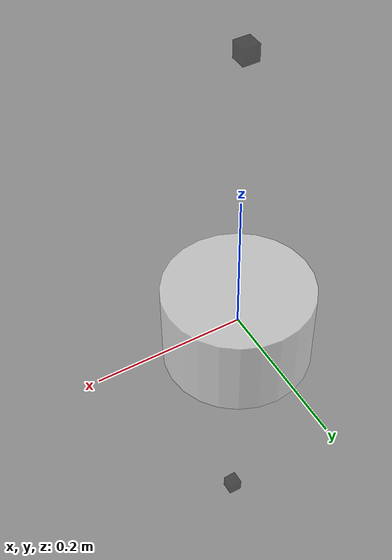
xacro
<?xml version="1.0"?>
<robot xmlns:xacro="https://www.ros.org/wiki/xacro" name="first_robot">
    <!-- 声明base模块 -->
    <xacro:macro name="base_link" params="length radius">
        <link name="base_link">
        <visual>
            <!-- 沿着自己几何中心的偏移和旋转量 -->
            <origin xyz="0.0 0.0 0.0" rpy="0.0 0.0 0.0"/>
            <geometry>
                <!-- 圆柱 半径0.10m 高度 length=0.12m -->
                <cylinder radius="${radius}" length="${length}"/>
                <!-- 圆柱 直径=0.2 -->
            </geometry>
            <material name="white">
                <color rgba="1.0 1.0 1.0 0.5"/>
            </material>
        </visual>
        </link>
    </xacro:macro>

    <!-- 机器人IMU部件，惯性单元的容器 -->
    <xacro:macro name="imu_link" params="imu_name xyz rpy">
     <link name="${imu_name}_link">
        <visual>
            <!-- 沿着自己几何中心的偏移和旋转量 -->
            <origin xyz="0.0 0.0 0.0" rpy="0.0 0.0 0.0"/>
            <geometry>
                <!-- 正方体 -->
                <box size="0.02 0.02 0.02"/>
            </geometry>
            <material name="black">
                <color rgba="0.0 0.0 0.0 0.5"/>
            </material>
        </visual>
     </link>

     <joint name="${imu_name}_joint" type="fixed">
        <!-- 父链接 -->
        <parent link="base_link"/>
        <!-- 子链接 -->
        <child link="${imu_name}_link"/>
        <!-- 子关节在父关节上的偏移和旋转 -->
        <origin xyz="${xyz}" />
     </joint>
    </xacro:macro>

    <!-- 传递参数调用base_link 模块 -->
    <xacro:base_link radius="0.10" length="0.12" />
    <!-- 传递参数调用 imu 模块 -->
    <xacro:imu_link imu_name= "imu_ci_up" xyz="0 0 0.4" rpy="0 0 0" />
    <xacro:imu_link imu_name= "imu_ci_down" xyz="0 0 -0.4" rpy="0 0 0" />

</robot>
